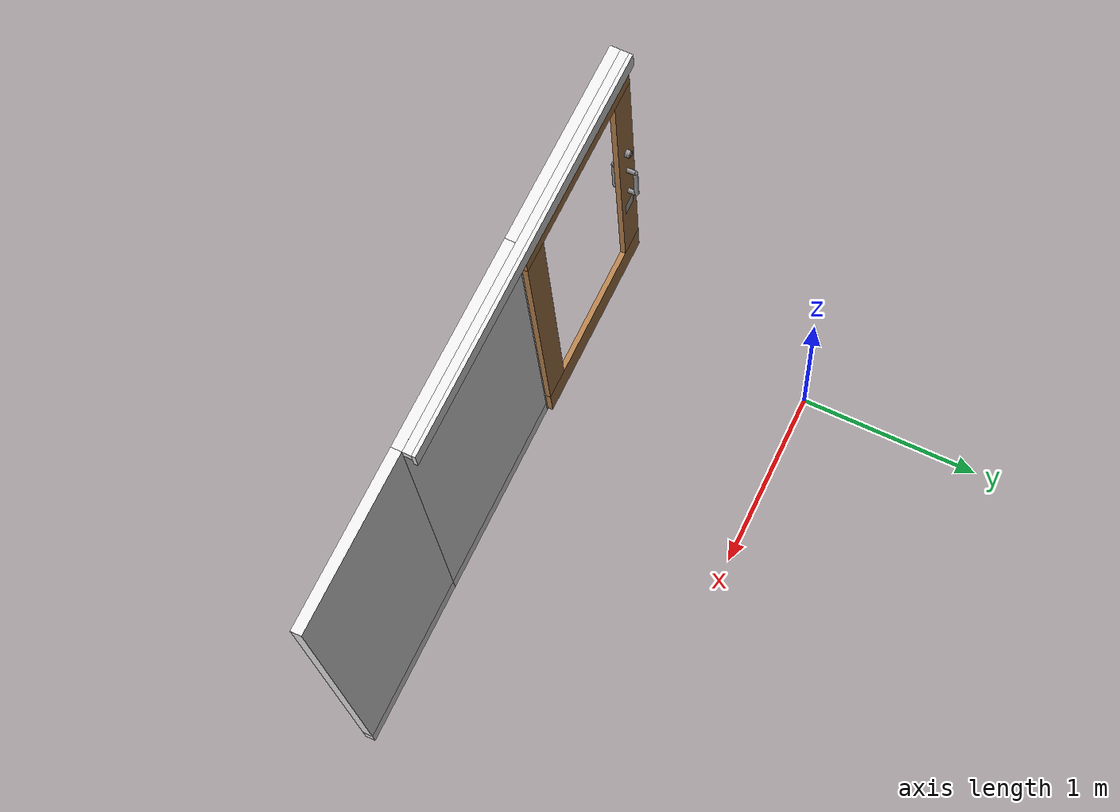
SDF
<sdf version="1.6">
 <world name="default">
  <model name="wall_center_long_b">
   <link name="link">
    <inertial>
     <mass>50</mass>
     <inertia><ixx>1</ixx><ixy>0</ixy><ixz>0</ixz><iyy>1</iyy><iyz>0</iyz><izz>1</izz></inertia>
    </inertial>
    <visual name="bottom_frame">
     <pose>0 0 0.05 0 -0 0</pose>
     <geometry><box><size>0.055 0.9 0.1</size></box></geometry>
     <material>
      <script><uri>model://base_materials/color/scripts</uri><name>hsr_color/white</name></script>
     </material>
    </visual>
    <collision name="collision_bottom_frame">
     <pose>0 0 0.05 0 -0 0</pose>
     <geometry><box><size>0.055 0.9 0.1</size></box></geometry>
    </collision>
    <visual name="wall">
     <pose>0 0 1.095 0 -0 0</pose>
     <geometry><box><size>0.055 0.9 1.99</size></box></geometry>
     <material>
      <script>
       <uri>model://base_materials/wall/scripts</uri>
       <uri>model://base_materials/wall/textures</uri>
       <name>wall/white_noise</name>
      </script>
     </material>
    </visual>
    <collision name="collision_wall">
     <pose>0 0 1.095 0 -0 0</pose>
     <geometry><box><size>0.055 0.9 1.99</size></box></geometry>
    </collision>
    <velocity_decay><linear>0</linear><angular>0</angular></velocity_decay>
   </link>
   <static>1</static>
   <pose>2.1875 -1.28 0 0 -0 1.5708</pose>
  </model>
  <model name="wall_center_long_c">
   <link name="link">
    <inertial>
     <mass>50</mass>
     <inertia><ixx>1</ixx><ixy>0</ixy><ixz>0</ixz><iyy>1</iyy><iyz>0</iyz><izz>1</izz></inertia>
    </inertial>
    <visual name="bottom_frame">
     <pose>0 0 0.05 0 -0 0</pose>
     <geometry><box><size>0.055 1.1 0.1</size></box></geometry>
     <material>
      <script><uri>model://base_materials/color/scripts</uri><name>hsr_color/white</name></script>
     </material>
    </visual>
    <collision name="collision_bottom_frame">
     <pose>0 0 0.05 0 -0 0</pose>
     <geometry><box><size>0.055 1.1 0.1</size></box></geometry>
    </collision>
    <visual name="wall">
     <pose>0 0 1.095 0 -0 0</pose>
     <geometry><box><size>0.055 1.1 1.99</size></box></geometry>
     <material>
      <script>
       <uri>model://base_materials/wall/scripts</uri>
       <uri>model://base_materials/wall/textures</uri>
       <name>wall/white_noise</name>
      </script>
     </material>
    </visual>
    <collision name="collision_wall">
     <pose>0 0 1.095 0 -0 0</pose>
     <geometry><box><size>0.055 1.1 1.99</size></box></geometry>
    </collision>
    <velocity_decay><linear>0</linear><angular>0</angular></velocity_decay>
   </link>
   <static>1</static>
   <pose>1.1875 -1.28 0 0 -0 1.5708</pose>
  </model>
  <model name="sliding_door_1">
   <joint name="frame_to_world_joint" type="revolute">
    <parent>world</parent>
    <child>frame</child>
    <axis>
     <xyz>0 0 1</xyz>
     <limit><upper>0</upper><lower>0</lower></limit>
     <use_parent_model_frame>1</use_parent_model_frame>
     <dynamics><spring_reference>0</spring_reference><spring_stiffness>0</spring_stiffness></dynamics>
    </axis>
   </joint>
   <link name="frame">
    <inertial>
     <mass>50</mass>
     <inertia><ixx>1</ixx><ixy>0</ixy><ixz>0</ixz><iyy>1</iyy><iyz>0</iyz><izz>1</izz></inertia>
    </inertial>
    <visual name="right_frame">
     <pose>0 0.5325 0.995 0 -0 0</pose>
     <geometry><box><size>0.055 0.035 1.99</size></box></geometry>
     <material>
      <script><uri>model://base_materials/color/scripts</uri><name>hsr_color/white</name></script>
     </material>
    </visual>
    <collision name="collision_right_frame">
     <pose>0 0.5325 0.995 0 -0 0</pose>
     <geometry><box><size>0.055 0.035 1.99</size></box></geometry>
    </collision>
    <visual name="left_frame">
     <pose>0 -0.5325 0.995 0 -0 0</pose>
     <geometry><box><size>0.055 0.035 1.99</size></box></geometry>
     <material>
      <script><uri>model://base_materials/color/scripts</uri><name>hsr_color/white</name></script>
     </material>
    </visual>
    <collision name="collision_left_frame">
     <pose>0 -0.5325 0.995 0 -0 0</pose>
     <geometry><box><size>0.055 0.035 1.99</size></box></geometry>
    </collision>
    <visual name="top_frame">
     <pose>0 0 2.04 0 -0 0</pose>
     <geometry><box><size>0.055 1.1 0.1</size></box></geometry>
     <material>
      <script><uri>model://base_materials/color/scripts</uri><name>hsr_color/white</name></script>
     </material>
    </visual>
    <collision name="collision_top_frame">
     <pose>0 0 2.04 0 -0 0</pose>
     <geometry><box><size>0.055 1.1 0.1</size></box></geometry>
    </collision>
    <visual name="top_guard">
     <pose>0.05 -0.55 2.065 0 -0 0</pose>
     <geometry><box><size>0.045 2.2 0.05</size></box></geometry>
     <material>
      <script><uri>model://base_materials/color/scripts</uri><name>hsr_color/white</name></script>
     </material>
    </visual>
    <collision name="collision_top_guard">
     <pose>0.05 -0.55 2.065 0 -0 0</pose>
     <geometry><box><size>0.045 2.2 0.05</size></box></geometry>
    </collision>
    <visual name="front_guard">
     <pose>0.0825 -0.55 2.04 0 -0 0</pose>
     <geometry><box><size>0.02 2.2 0.1</size></box></geometry>
     <material>
      <script><uri>model://base_materials/color/scripts</uri><name>hsr_color/white</name></script>
     </material>
    </visual>
    <collision name="collision_front_guard">
     <pose>0.0825 -0.55 2.04 0 -0 0</pose>
     <geometry><box><size>0.02 2.2 0.1</size></box></geometry>
    </collision>
   </link>
   <link name="door">
    <pose>-0.0275 0 0 0 -0 0</pose>
    <visual name="top_frame">
     <pose>0.0775 0 1.9075 0 -0 0</pose>
     <geometry><box><size>0.03 1.1 0.185</size></box></geometry>
     <material>
      <script><uri>model://base_materials/wood/scripts/wood.material</uri><name>base_materials/wood</name></script>
     </material>
    </visual>
    <collision name="collision_top_frame">
     <pose>0.0775 0 1.9075 0 -0 0</pose>
     <geometry><box><size>0.03 1.1 0.185</size></box></geometry>
    </collision>
    <visual name="right_frame">
     <pose>0.0775 0.4675 1.025 0 -0 0</pose>
     <geometry><box><size>0.03 0.165 1.58</size></box></geometry>
     <material>
      <script><uri>model://base_materials/wood/scripts/wood.material</uri><name>base_materials/wood</name></script>
     </material>
    </visual>
    <collision name="collision_right_frame">
     <pose>0.0775 0.4675 1.025 0 -0 0</pose>
     <geometry><box><size>0.03 0.165 1.58</size></box></geometry>
    </collision>
    <visual name="left_frame">
     <pose>0.0775 -0.4675 1.025 0 -0 0</pose>
     <geometry><box><size>0.03 0.165 1.58</size></box></geometry>
     <material>
      <script><uri>model://base_materials/wood/scripts/wood.material</uri><name>base_materials/wood</name></script>
     </material>
    </visual>
    <collision name="collision_left_frame">
     <pose>0.0775 -0.4675 1.025 0 -0 0</pose>
     <geometry><box><size>0.03 0.165 1.58</size></box></geometry>
    </collision>
    <visual name="bottom_frame">
     <pose>0.0775 0 0.1425 0 -0 0</pose>
     <geometry><box><size>0.03 1.1 0.185</size></box></geometry>
     <material>
      <script><uri>model://base_materials/wood/scripts/wood.material</uri><name>base_materials/wood</name></script>
     </material>
    </visual>
    <collision name="collision_bottom_frame">
     <pose>0.0775 0 0.1425 0 -0 0</pose>
     <geometry><box><size>0.03 1.1 0.185</size></box></geometry>
    </collision>
    <visual name="handle_top_frame">
     <pose>0.0775 0.4675 1.0675 3.14159 1.57079 3.14159</pose>
     <geometry><cylinder><radius>0.0125</radius><length>0.125</length></cylinder></geometry>
     <material>
      <script><uri>model://base_materials/color/scripts</uri><name>hsr_color/grey</name></script>
     </material>
    </visual>
    <collision name="collision_handle_top_frame">
     <pose>0.0775 0.4675 1.0675 3.14159 1.57079 3.14159</pose>
     <geometry><cylinder><radius>0.0125</radius><length>0.125</length></cylinder></geometry>
    </collision>
    <visual name="handle_bottom_frame">
     <pose>0.0775 0.4675 0.8425 3.14159 1.57079 3.14159</pose>
     <geometry><cylinder><radius>0.0125</radius><length>0.125</length></cylinder></geometry>
     <material>
      <script><uri>model://base_materials/color/scripts</uri><name>hsr_color/grey</name></script>
     </material>
    </visual>
    <collision name="collision_handle_bottom_frame">
     <pose>0.0775 0.4675 0.8425 3.14159 1.57079 3.14159</pose>
     <geometry><cylinder><radius>0.0125</radius><length>0.125</length></cylinder></geometry>
    </collision>
    <visual name="handle_front_frame">
     <pose>0.14 0.4675 0.955 0 -0 0</pose>
     <geometry><cylinder><radius>0.0125</radius><length>0.225</length></cylinder></geometry>
     <material>
      <script><uri>model://base_materials/color/scripts</uri><name>hsr_color/grey</name></script>
     </material>
    </visual>
    <collision name="collision_handle_front_frame">
     <pose>0.14 0.4675 0.955 0 -0 0</pose>
     <geometry><cylinder><radius>0.0125</radius><length>0.225</length></cylinder></geometry>
    </collision>
    <visual name="marker_0011">
     <pose>0.093 0.4675 0.69 3.14159 1.57079 -9.3e-05</pose>
     <geometry><box><size>0.09 0.09 0.0001</size></box></geometry>
     <material>
      <script>
       <uri>model://marker/0011/scripts</uri>
       <uri>model://marker/0011/textures</uri>
       <name>Marker/0011</name>
      </script>
     </material>
    </visual>
    <visual name="handle_back_frame">
     <pose>0.015 0.4675 0.955 0 -0 0</pose>
     <geometry><cylinder><radius>0.0125</radius><length>0.225</length></cylinder></geometry>
     <material>
      <script><uri>model://base_materials/color/scripts</uri><name>hsr_color/grey</name></script>
     </material>
    </visual>
    <collision name="collision_handle_back_frame">
     <pose>0.015 0.4675 0.955 0 -0 0</pose>
     <geometry><cylinder><radius>0.0125</radius><length>0.225</length></cylinder></geometry>
    </collision>
    <visual name="marker_0013">
     <pose>0.062 0.4675 0.69 3.14159 1.57079 3.14159</pose>
     <geometry><box><size>0.09 0.09 0.0001</size></box></geometry>
     <material>
      <script>
       <uri>model://marker/0013/scripts</uri>
       <uri>model://marker/0013/textures</uri>
       <name>Marker/0013</name>
      </script>
     </material>
    </visual>
    <visual name="handle_front_top_corner">
     <pose>0.14 0.4675 1.0675 0 -0 0</pose>
     <geometry><sphere><radius>0.0125</radius></sphere></geometry>
     <material>
      <script><uri>model://base_materials/color/scripts</uri><name>hsr_color/grey</name></script>
     </material>
    </visual>
    <collision name="collision_handle_front_top_corner">
     <pose>0.14 0.4675 1.0675 0 -0 0</pose>
     <geometry><sphere><radius>0.0125</radius></sphere></geometry>
    </collision>
    <visual name="handle_front_bottom_corner">
     <pose>0.14 0.4675 0.8425 0 -0 0</pose>
     <geometry><sphere><radius>0.0125</radius></sphere></geometry>
     <material>
      <script><uri>model://base_materials/color/scripts</uri><name>hsr_color/grey</name></script>
     </material>
    </visual>
    <collision name="collision_handle_front_bottom_corner">
     <pose>0.14 0.4675 0.8425 0 -0 0</pose>
     <geometry><sphere><radius>0.0125</radius></sphere></geometry>
    </collision>
    <visual name="handle_back_top_corner">
     <pose>0.015 0.4675 1.0675 0 -0 0</pose>
     <geometry><sphere><radius>0.0125</radius></sphere></geometry>
     <material>
      <script><uri>model://base_materials/color/scripts</uri><name>hsr_color/grey</name></script>
     </material>
    </visual>
    <collision name="collision_handle_back_top_corner">
     <pose>0.015 0.4675 1.0675 0 -0 0</pose>
     <geometry><sphere><radius>0.0125</radius></sphere></geometry>
    </collision>
    <visual name="handle_back_bottom_corner">
     <pose>0.015 0.4675 0.8425 0 -0 0</pose>
     <geometry><sphere><radius>0.0125</radius></sphere></geometry>
     <material>
      <script><uri>model://base_materials/color/scripts</uri><name>hsr_color/grey</name></script>
     </material>
    </visual>
    <collision name="collision_handle_back_bottom_corner">
     <pose>0.015 0.4675 0.8425 0 -0 0</pose>
     <geometry><sphere><radius>0.0125</radius></sphere></geometry>
    </collision>
    <visual name="handle_lock1">
     <pose>0.0775 0.4675 1.25 3.14159 1.57079 3.14159</pose>
     <geometry><cylinder><radius>0.02</radius><length>0.08</length></cylinder></geometry>
     <material>
      <script><uri>model://base_materials/color/scripts</uri><name>hsr_color/grey</name></script>
     </material>
    </visual>
    <collision name="collision_handle_lock1">
     <pose>0.0775 0.4675 1.25 3.14159 1.57079 3.14159</pose>
     <geometry><cylinder><radius>0.02</radius><length>0.08</length></cylinder></geometry>
    </collision>
    <visual name="handle_lock2">
     <pose>0.0775 0.4675 1.25 3.14159 1.57079 3.14159</pose>
     <geometry><cylinder><radius>0.015</radius><length>0.09</length></cylinder></geometry>
     <material>
      <script><uri>model://base_materials/color/scripts</uri><name>hsr_color/grey</name></script>
     </material>
    </visual>
    <collision name="collision_handle_lock2">
     <pose>0.0775 0.4675 1.25 3.14159 1.57079 3.14159</pose>
     <geometry><cylinder><radius>0.015</radius><length>0.09</length></cylinder></geometry>
    </collision>
    <velocity_decay><linear>0</linear><angular>0</angular></velocity_decay>
    <inertial>
     <inertia><ixx>1</ixx><ixy>0</ixy><ixz>0</ixz><iyy>1</iyy><iyz>0</iyz><izz>1</izz></inertia>
     <mass>1</mass>
    </inertial>
   </link>
   <joint name="top_sliding_joint" type="prismatic">
    <parent>frame</parent>
    <child>door</child>
    <axis>
     <dynamics>
      <damping>1</damping>
      <friction>1</friction>
      <spring_reference>0</spring_reference>
      <spring_stiffness>0</spring_stiffness>
     </dynamics>
     <limit><lower>-1</lower><upper>0</upper></limit>
     <xyz>0 1 0</xyz>
     <use_parent_model_frame>1</use_parent_model_frame>
    </axis>
   </joint>
   <static>0</static>
   <pose>0.087499 -1.28 -6.1e-05 1e-06 3e-06 1.57079</pose>
  </model>
 </world>
</sdf>
